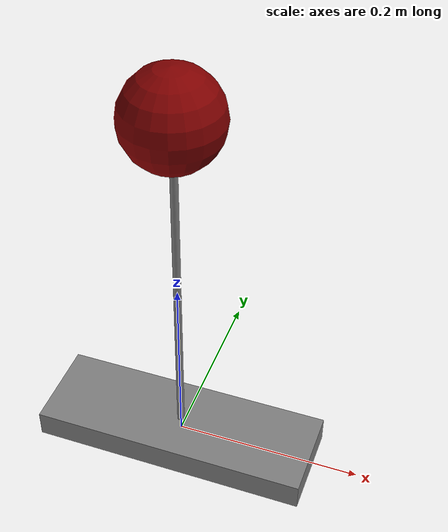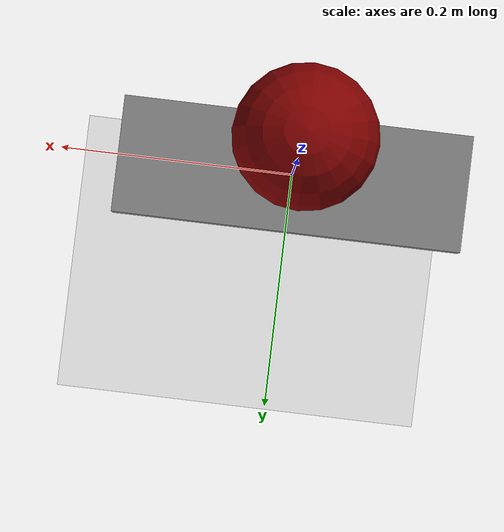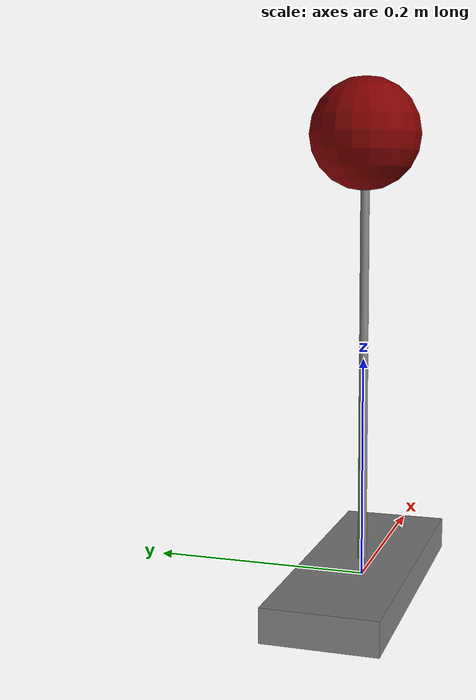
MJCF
<mujoco model="cartpole">
  <option integrator="RK4"/>
 <asset>
    <texture name="grid" type="2d" builtin="checker" rgb1=".1 .2 .3"
     rgb2=".2 .3 .4" width="300" height="300"/>
    <material name="grid" texture="grid" texrepeat="8 8" reflectance=".2"/>
  </asset>
  <worldbody>
    <light diffuse=".5 .5 .5" pos="0 0 3" dir="0 0 -1"/>
    <geom type="plane" size="2 2 0.1" rgba=".9 .9 .9 1" pos="0 0 -0.65" material="grid"/>
    <body name="top">
      <joint name="cart_slide" type="slide" axis="1 0 0" range="-1 1" limited="true" damping="0.5"/>
      <geom name="cart" type="box" size="0.15 0.05 0.015"/>
      <body name="ball_and_pole">
        <joint type="hinge" axis="0 1 0" damping="0.1"/>
        <geom name="ball" pos="0 0 0.4" size="0.05" rgba="0.5 0 0 1"/>
        <geom name="pole" type="cylinder" pos = "0 0 0.2" size="0.004 0.2"/>
      </body>
    </body>
  </worldbody>
  <actuator>
    <motor joint="cart_slide" gear="10" ctrlrange="-1 1"/>
  </actuator>
  <keyframe>
    <key name="init" qpos="0 0.1" qvel="0 0"/>
    <key name="test" qpos="0 0.2" qvel="1 0"/>
  </keyframe>
</mujoco>
